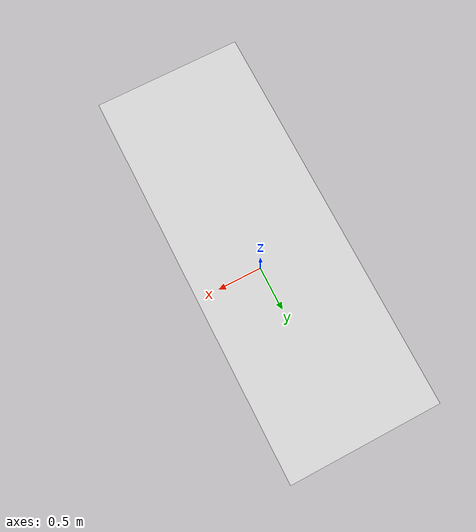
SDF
<?xml version="1.0"?>

<sdf version="1.6">
  <model name="ur5_kitchenbase">
    <static>true</static>

    <link name="top_plate">
      <pose>0 0 0.58 0 0 0</pose>
      <collision name="top_plate_collision">
        <geometry>
          <box>
            <size>1.5 4 0.8</size>
          </box>
        </geometry>
        <surface>
          <contact>
            <collide_bitmask>0x01</collide_bitmask>
          </contact>
        </surface>
      </collision>
      <visual name="top_plate_visual">
        <geometry>
          <box>
            <size>1.5 4 0.8</size>
          </box>
        </geometry>
        <material>
          <script>
            <uri>file://media/materials/scripts/gazebo.material</uri>
            <name>Gazebo/White</name>
          </script>
        </material>
      </visual>
    </link>
  </model>
</sdf>
